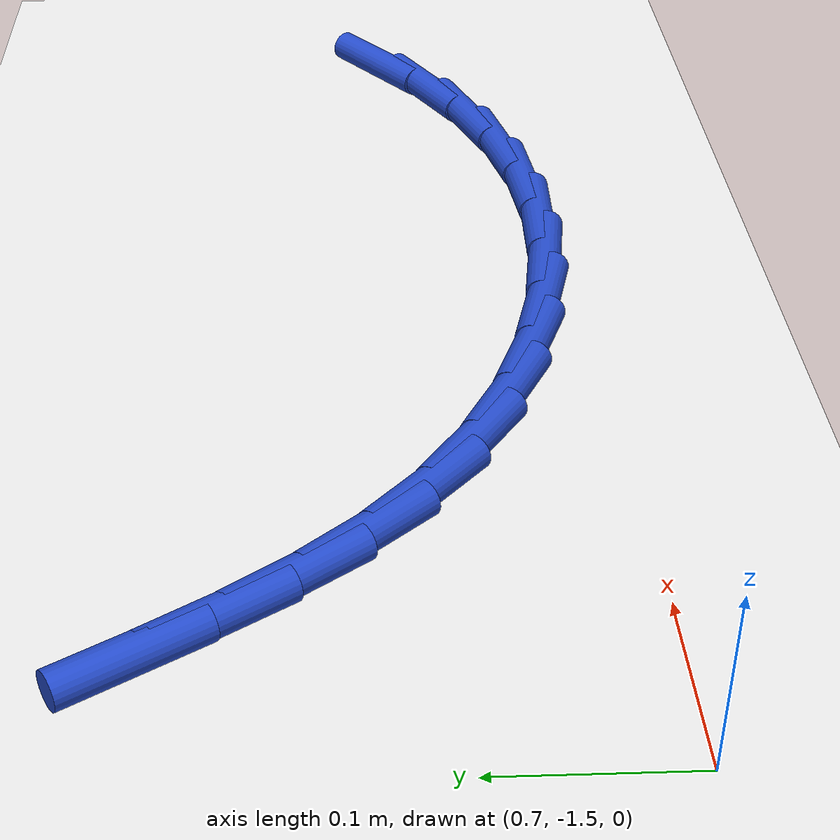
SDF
<sdf version="1.6">
 <world name="default">
  <model name="ground_plane">
   <static>1</static>
   <link name="link">
    <collision name="collision">
     <geometry><plane><normal>0 0 1</normal><size>100 100</size></plane></geometry>
     <surface><friction><ode><mu>100</mu><mu2>50</mu2></ode></friction></surface>
    </collision>
    <visual name="visual">
     <cast_shadows>0</cast_shadows>
     <geometry><plane><normal>0 0 1</normal><size>100 100</size></plane></geometry>
     <material>
      <script><uri>file://media/materials/scripts/gazebo.material</uri><name>Gazebo/WhiteGlow</name></script>
     </material>
    </visual>
   </link>
  </model>
  <model name="line">
   <link name="link_141">
    <pose>1.3595626550182436 -1.385679659875775 0.01 0 1.57 0.6670417270224821</pose>
    <collision name="collision">
     <geometry><cylinder><radius>0.01</radius><length>0.08</length></cylinder></geometry>
    </collision>
    <visual name="visual">
     <material>
      <script><name>Gazebo/Blue</name><uri>file://media/materials/scripts/gazebo.material</uri></script>
     </material>
     <geometry><cylinder><radius>0.01</radius><length>0.08</length></cylinder></geometry>
    </visual>
   </link>
   <link name="link_142">
    <pose>1.318762681512893 -1.4178076127678947 0.01 0 1.57 0.5168951711853272</pose>
    <collision name="collision">
     <geometry><cylinder><radius>0.01</radius><length>0.08</length></cylinder></geometry>
    </collision>
    <visual name="visual">
     <material>
      <script><name>Gazebo/Blue</name><uri>file://media/materials/scripts/gazebo.material</uri></script>
     </material>
     <geometry><cylinder><radius>0.01</radius><length>0.08</length></cylinder></geometry>
    </visual>
   </link>
   <link name="link_143">
    <pose>1.2751086896636326 -1.4426225697802457 0.01 0 1.57 0.36991011916496286</pose>
    <collision name="collision">
     <geometry><cylinder><radius>0.01</radius><length>0.08</length></cylinder></geometry>
    </collision>
    <visual name="visual">
     <material>
      <script><name>Gazebo/Blue</name><uri>file://media/materials/scripts/gazebo.material</uri></script>
     </material>
     <geometry><cylinder><radius>0.01</radius><length>0.08</length></cylinder></geometry>
    </visual>
   </link>
   <link name="link_144">
    <pose>1.2292990310298209 -1.4603857121527841 0.01 0 1.57 0.2298114822410831</pose>
    <collision name="collision">
     <geometry><cylinder><radius>0.01</radius><length>0.08</length></cylinder></geometry>
    </collision>
    <visual name="visual">
     <material>
      <script><name>Gazebo/Blue</name><uri>file://media/materials/scripts/gazebo.material</uri></script>
     </material>
     <geometry><cylinder><radius>0.01</radius><length>0.08</length></cylinder></geometry>
    </visual>
   </link>
   <link name="link_145">
    <pose>1.1820755287637474 -1.4714333916398654 0.01 0 1.57 0.09716704551282852</pose>
    <collision name="collision">
     <geometry><cylinder><radius>0.01</radius><length>0.08</length></cylinder></geometry>
    </collision>
    <visual name="visual">
     <material>
      <script><name>Gazebo/Blue</name><uri>file://media/materials/scripts/gazebo.material</uri></script>
     </material>
     <geometry><cylinder><radius>0.01</radius><length>0.08</length></cylinder></geometry>
    </visual>
   </link>
   <link name="link_146">
    <pose>1.1341800060176956 -1.4761019599958463 0.01 0 1.57 -0.028725401879996195</pose>
    <collision name="collision">
     <geometry><cylinder><radius>0.01</radius><length>0.08</length></cylinder></geometry>
    </collision>
    <visual name="visual">
     <material>
      <script><name>Gazebo/Blue</name><uri>file://media/materials/scripts/gazebo.material</uri></script>
     </material>
     <geometry><cylinder><radius>0.01</radius><length>0.08</length></cylinder></geometry>
    </visual>
   </link>
   <link name="link_147">
    <pose>1.0863542859439552 -1.4747277689750833 0.01 0 1.57 -0.14948243436800868</pose>
    <collision name="collision">
     <geometry><cylinder><radius>0.01</radius><length>0.08</length></cylinder></geometry>
    </collision>
    <visual name="visual">
     <material>
      <script><name>Gazebo/Blue</name><uri>file://media/materials/scripts/gazebo.material</uri></script>
     </material>
     <geometry><cylinder><radius>0.01</radius><length>0.08</length></cylinder></geometry>
    </visual>
   </link>
   <link name="link_148">
    <pose>1.0393401916948126 -1.467647170331932 0.01 0 1.57 -0.26732246817346655</pose>
    <collision name="collision">
     <geometry><cylinder><radius>0.01</radius><length>0.08</length></cylinder></geometry>
    </collision>
    <visual name="visual">
     <material>
      <script><name>Gazebo/Blue</name><uri>file://media/materials/scripts/gazebo.material</uri></script>
     </material>
     <geometry><cylinder><radius>0.01</radius><length>0.08</length></cylinder></geometry>
    </visual>
   </link>
   <link name="link_149">
    <pose>0.9938795464225548 -1.4551965158207483 0.01 0 1.57 -0.38485669278555135</pose>
    <collision name="collision">
     <geometry><cylinder><radius>0.01</radius><length>0.08</length></cylinder></geometry>
    </collision>
    <visual name="visual">
     <material>
      <script><name>Gazebo/Blue</name><uri>file://media/materials/scripts/gazebo.material</uri></script>
     </material>
     <geometry><cylinder><radius>0.01</radius><length>0.08</length></cylinder></geometry>
    </visual>
   </link>
   <link name="link_150">
    <pose>0.9507141732794692 -1.437712157195889 0.01 0 1.57 -0.5049674566105455</pose>
    <collision name="collision">
     <geometry><cylinder><radius>0.01</radius><length>0.08</length></cylinder></geometry>
    </collision>
    <visual name="visual">
     <material>
      <script><name>Gazebo/Blue</name><uri>file://media/materials/scripts/gazebo.material</uri></script>
     </material>
     <geometry><cylinder><radius>0.01</radius><length>0.08</length></cylinder></geometry>
    </visual>
   </link>
   <link name="link_151">
    <pose>0.9105858954178424 -1.4155304462117098 0.01 0 1.57 -0.6307155612971383</pose>
    <collision name="collision">
     <geometry><cylinder><radius>0.01</radius><length>0.08</length></cylinder></geometry>
    </collision>
    <visual name="visual">
     <material>
      <script><name>Gazebo/Blue</name><uri>file://media/materials/scripts/gazebo.material</uri></script>
     </material>
     <geometry><cylinder><radius>0.01</radius><length>0.08</length></cylinder></geometry>
    </visual>
   </link>
   <link name="link_152">
    <pose>0.874236535989963 -1.3889877346225674 0.01 0 1.57 -0.7620256128720388</pose>
    <collision name="collision">
     <geometry><cylinder><radius>0.01</radius><length>0.08</length></cylinder></geometry>
    </collision>
    <visual name="visual">
     <material>
      <script><name>Gazebo/Blue</name><uri>file://media/materials/scripts/gazebo.material</uri></script>
     </material>
     <geometry><cylinder><radius>0.01</radius><length>0.08</length></cylinder></geometry>
    </visual>
   </link>
   <link name="link_153">
    <pose>0.8422529430957063 -1.3584653323396 0.01 0 1.57 -0.876605637614365</pose>
    <collision name="collision">
     <geometry><cylinder><radius>0.01</radius><length>0.08</length></cylinder></geometry>
    </collision>
    <visual name="visual">
     <material>
      <script><name>Gazebo/Blue</name><uri>file://media/materials/scripts/gazebo.material</uri></script>
     </material>
     <geometry><cylinder><radius>0.01</radius><length>0.08</length></cylinder></geometry>
    </visual>
   </link>
   <link name="link_154">
    <pose>0.8141173457708308 -1.3246649985094652 0.01 0 1.57 -0.9615758960657965</pose>
    <collision name="collision">
     <geometry><cylinder><radius>0.01</radius><length>0.08</length></cylinder></geometry>
    </collision>
    <visual name="visual">
     <material>
      <script><name>Gazebo/Blue</name><uri>file://media/materials/scripts/gazebo.material</uri></script>
     </material>
     <geometry><cylinder><radius>0.01</radius><length>0.08</length></cylinder></geometry>
    </visual>
   </link>
   <link name="link_155">
    <pose>0.7888323849426131 -1.288427620461306 0.01 0 1.57 -1.0162361949633139</pose>
    <collision name="collision">
     <geometry><cylinder><radius>0.01</radius><length>0.08</length></cylinder></geometry>
    </collision>
    <visual name="visual">
     <material>
      <script><name>Gazebo/Blue</name><uri>file://media/materials/scripts/gazebo.material</uri></script>
     </material>
     <geometry><cylinder><radius>0.01</radius><length>0.08</length></cylinder></geometry>
    </visual>
   </link>
   <link name="link_156">
    <pose>0.7653987524274906 -1.250594650959985 0.01 0 1.57 -1.0413218340731356</pose>
    <collision name="collision">
     <geometry><cylinder><radius>0.01</radius><length>0.08</length></cylinder></geometry>
    </collision>
    <visual name="visual">
     <material>
      <script><name>Gazebo/Blue</name><uri>file://media/materials/scripts/gazebo.material</uri></script>
     </material>
     <geometry><cylinder><radius>0.01</radius><length>0.08</length></cylinder></geometry>
    </visual>
   </link>
  </model>
 </world>
</sdf>
